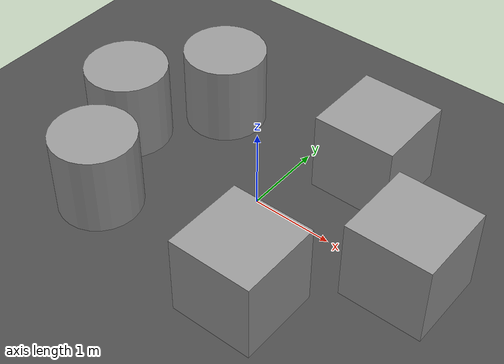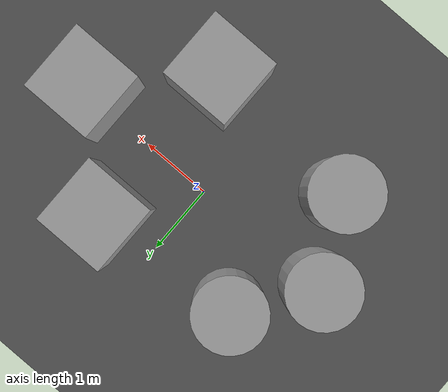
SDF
<sdf version="1.6">
 <world name="default">
  <light name="sun" type="directional">
   <pose>0 0 10 0 -0 0</pose>
   <diffuse>0.8 0.8 0.8 1</diffuse>
   <specular>0.2 0.2 0.2 1</specular>
   <attenuation>
    <range>1000</range>
    <constant>0.9</constant>
    <linear>0.01</linear>
    <quadratic>0.001</quadratic>
   </attenuation>
   <direction>-0.5 0.1 -0.9</direction>
  </light>
  <model name="ground_plane">
   <static>1</static>
   <link name="link">
    <collision name="collision">
     <geometry><plane><normal>0 0 1</normal><size>100 100</size></plane></geometry>
     <surface>
      <contact><collide_bitmask>65535</collide_bitmask></contact>
      <friction><ode><mu>100</mu><mu2>50</mu2></ode></friction>
     </surface>
    </collision>
    <visual name="visual">
     <cast_shadows>0</cast_shadows>
     <geometry><plane><normal>0 0 1</normal><size>100 100</size></plane></geometry>
     <material>
      <script><uri>file://media/materials/scripts/gazebo.material</uri><name>Gazebo/Grey</name></script>
     </material>
    </visual>
   </link>
  </model>
  <gravity>0 0 -9.8</gravity>
  <magnetic_field>6e-06 2.3e-05 -4.2e-05</magnetic_field>
  <atmosphere type="adiabatic"/>
  <physics name="default_physics" default="0" type="ode">
   <max_step_size>0.001</max_step_size>
   <real_time_factor>1</real_time_factor>
   <real_time_update_rate>1000</real_time_update_rate>
  </physics>
  <scene><ambient>0.4 0.4 0.4 1</ambient><background>0.7 0.7 0.7 1</background><shadows>1</shadows></scene>
  <spherical_coordinates>
   <surface_model>EARTH_WGS84</surface_model>
   <latitude_deg>0</latitude_deg>
   <longitude_deg>0</longitude_deg>
   <elevation>0</elevation>
   <heading_deg>0</heading_deg>
  </spherical_coordinates>
  <model name="asphalt_plane">
   <static>1</static>
   <link name="link">
    <collision name="collision"><geometry><box><size>20 20 0.1</size></box></geometry></collision>
    <visual name="visual">
     <cast_shadows>0</cast_shadows>
     <geometry><box><size>20 20 0.1</size></box></geometry>
     <material>
      <script>
       <uri>model://asphalt_plane/materials/scripts</uri>
       <uri>model://asphalt_plane/materials/textures</uri>
       <name>vrc/asphalt</name>
      </script>
     </material>
    </visual>
   </link>
   <pose>0.061307 0.012399 0 0 -0 0</pose>
  </model>
  <model name="unit_box">
   <pose>2.03227 -0.060556 0.550002 -4e-06 0 7e-06</pose>
   <link name="link">
    <inertial>
     <mass>1</mass>
     <inertia>
      <ixx>0.166667</ixx>
      <ixy>0</ixy>
      <ixz>0</ixz>
      <iyy>0.166667</iyy>
      <iyz>0</iyz>
      <izz>0.166667</izz>
     </inertia>
    </inertial>
    <collision name="collision"><geometry><box><size>1 1 1</size></box></geometry></collision>
    <visual name="visual">
     <geometry><box><size>1 1 1</size></box></geometry>
     <material>
      <script><name>Gazebo/Grey</name><uri>file://media/materials/scripts/gazebo.material</uri></script>
     </material>
    </visual>
   </link>
  </model>
  <model name="unit_box_0">
   <pose>0.842213 1.09166 0.550002 -4e-06 0 7e-06</pose>
   <link name="link">
    <inertial>
     <mass>1</mass>
     <inertia>
      <ixx>0.166667</ixx>
      <ixy>0</ixy>
      <ixz>0</ixz>
      <iyy>0.166667</iyy>
      <iyz>0</iyz>
      <izz>0.166667</izz>
     </inertia>
    </inertial>
    <collision name="collision"><geometry><box><size>1 1 1</size></box></geometry></collision>
    <visual name="visual">
     <geometry><box><size>1 1 1</size></box></geometry>
     <material>
      <script><name>Gazebo/Grey</name><uri>file://media/materials/scripts/gazebo.material</uri></script>
     </material>
    </visual>
   </link>
  </model>
  <model name="unit_box_1">
   <pose>0.836905 -1.29523 0.550002 -4e-06 -0 8e-06</pose>
   <link name="link">
    <inertial>
     <mass>1</mass>
     <inertia>
      <ixx>0.166667</ixx>
      <ixy>0</ixy>
      <ixz>0</ixz>
      <iyy>0.166667</iyy>
      <iyz>0</iyz>
      <izz>0.166667</izz>
     </inertia>
    </inertial>
    <collision name="collision"><geometry><box><size>1 1 1</size></box></geometry></collision>
    <visual name="visual">
     <geometry><box><size>1 1 1</size></box></geometry>
     <material>
      <script><name>Gazebo/Grey</name><uri>file://media/materials/scripts/gazebo.material</uri></script>
     </material>
    </visual>
   </link>
  </model>
  <model name="unit_cylinder">
   <pose>-1.94204 -0.036108 0.550003 -5e-06 -5e-06 8e-06</pose>
   <link name="link">
    <inertial>
     <mass>1</mass>
     <inertia><ixx>0.145833</ixx><ixy>0</ixy><ixz>0</ixz><iyy>0.145833</iyy><iyz>0</iyz><izz>0.125</izz></inertia>
    </inertial>
    <collision name="collision">
     <geometry><cylinder><radius>0.5</radius><length>1</length></cylinder></geometry>
    </collision>
    <visual name="visual">
     <geometry><cylinder><radius>0.5</radius><length>1</length></cylinder></geometry>
     <material>
      <script><name>Gazebo/Grey</name><uri>file://media/materials/scripts/gazebo.material</uri></script>
     </material>
    </visual>
   </link>
  </model>
  <model name="unit_cylinder_0">
   <pose>-1.24615 0.939821 0.550002 3e-06 1e-06 -9e-06</pose>
   <link name="link">
    <inertial>
     <mass>1</mass>
     <inertia><ixx>0.145833</ixx><ixy>0</ixy><ixz>0</ixz><iyy>0.145833</iyy><iyz>0</iyz><izz>0.125</izz></inertia>
    </inertial>
    <collision name="collision">
     <geometry><cylinder><radius>0.5</radius><length>1</length></cylinder></geometry>
    </collision>
    <visual name="visual">
     <geometry><cylinder><radius>0.5</radius><length>1</length></cylinder></geometry>
     <material>
      <script><name>Gazebo/Grey</name><uri>file://media/materials/scripts/gazebo.material</uri></script>
     </material>
    </visual>
   </link>
  </model>
  <model name="unit_cylinder_1">
   <pose>-1.36723 -1.14084 0.550003 -5e-06 -3e-06 9e-06</pose>
   <link name="link">
    <inertial>
     <mass>1</mass>
     <inertia><ixx>0.145833</ixx><ixy>0</ixy><ixz>0</ixz><iyy>0.145833</iyy><iyz>0</iyz><izz>0.125</izz></inertia>
    </inertial>
    <collision name="collision">
     <geometry><cylinder><radius>0.5</radius><length>1</length></cylinder></geometry>
    </collision>
    <visual name="visual">
     <geometry><cylinder><radius>0.5</radius><length>1</length></cylinder></geometry>
     <material>
      <script><name>Gazebo/Grey</name><uri>file://media/materials/scripts/gazebo.material</uri></script>
     </material>
    </visual>
   </link>
  </model>
  <light name="user_directional_light_0" type="directional">
   <pose>-3.99338 3.84888 1 0 -0 0</pose>
   <diffuse>0.5 0.5 0.5 1</diffuse>
   <specular>0.1 0.1 0.1 1</specular>
   <direction>0.1 0.1 -0.9</direction>
   <attenuation>
    <range>20</range>
    <constant>0.5</constant>
    <linear>0.01</linear>
    <quadratic>0.001</quadratic>
   </attenuation>
  </light>
  <light name="user_directional_light_1" type="directional">
   <pose>2.07092 6.31515 1 0 -0 0</pose>
   <diffuse>0.5 0.5 0.5 1</diffuse>
   <specular>0.1 0.1 0.1 1</specular>
   <direction>0.1 0.1 -0.9</direction>
   <attenuation>
    <range>20</range>
    <constant>0.5</constant>
    <linear>0.01</linear>
    <quadratic>0.001</quadratic>
   </attenuation>
  </light>
  <light name="user_directional_light_2" type="directional">
   <pose>-0.389113 0.019116 1 0 -0 0</pose>
   <diffuse>0.5 0.5 0.5 1</diffuse>
   <specular>0.1 0.1 0.1 1</specular>
   <direction>0.1 0.1 -0.9</direction>
   <attenuation>
    <range>20</range>
    <constant>0.5</constant>
    <linear>0.01</linear>
    <quadratic>0.001</quadratic>
   </attenuation>
  </light>
  <light name="user_directional_light_3" type="directional">
   <pose>-6.57649 -7.9969 1 0 -0 0</pose>
   <diffuse>0.5 0.5 0.5 1</diffuse>
   <specular>0.1 0.1 0.1 1</specular>
   <direction>0.1 0.1 -0.9</direction>
   <attenuation>
    <range>20</range>
    <constant>0.5</constant>
    <linear>0.01</linear>
    <quadratic>0.001</quadratic>
   </attenuation>
  </light>
  <light name="user_directional_light_4" type="directional">
   <pose>7.24752 -7.67525 1 0 -0 0</pose>
   <diffuse>0.5 0.5 0.5 1</diffuse>
   <specular>0.1 0.1 0.1 1</specular>
   <direction>0.1 0.1 -0.9</direction>
   <attenuation>
    <range>20</range>
    <constant>0.5</constant>
    <linear>0.01</linear>
    <quadratic>0.001</quadratic>
   </attenuation>
  </light>
  <light name="user_directional_light_5" type="directional">
   <pose>7.46648 1.36522 1 0 -0 0</pose>
   <diffuse>0.5 0.5 0.5 1</diffuse>
   <specular>0.1 0.1 0.1 1</specular>
   <direction>0.1 0.1 -0.9</direction>
   <attenuation>
    <range>20</range>
    <constant>0.5</constant>
    <linear>0.01</linear>
    <quadratic>0.001</quadratic>
   </attenuation>
  </light>
  <light name="user_directional_light_6" type="directional">
   <pose>-7.28229 8.58612 1 0 -0 0</pose>
   <diffuse>0.5 0.5 0.5 1</diffuse>
   <specular>0.1 0.1 0.1 1</specular>
   <direction>0.1 0.1 -0.9</direction>
   <attenuation>
    <range>20</range>
    <constant>0.5</constant>
    <linear>0.01</linear>
    <quadratic>0.001</quadratic>
   </attenuation>
  </light>
  <light name="user_directional_light_7" type="directional">
   <pose>-0.013932 -7.64955 1 0 -0 0</pose>
   <diffuse>0.5 0.5 0.5 1</diffuse>
   <specular>0.1 0.1 0.1 1</specular>
   <direction>0.1 0.1 -0.9</direction>
   <attenuation>
    <range>20</range>
    <constant>0.5</constant>
    <linear>0.01</linear>
    <quadratic>0.001</quadratic>
   </attenuation>
  </light>
 </world>
</sdf>
